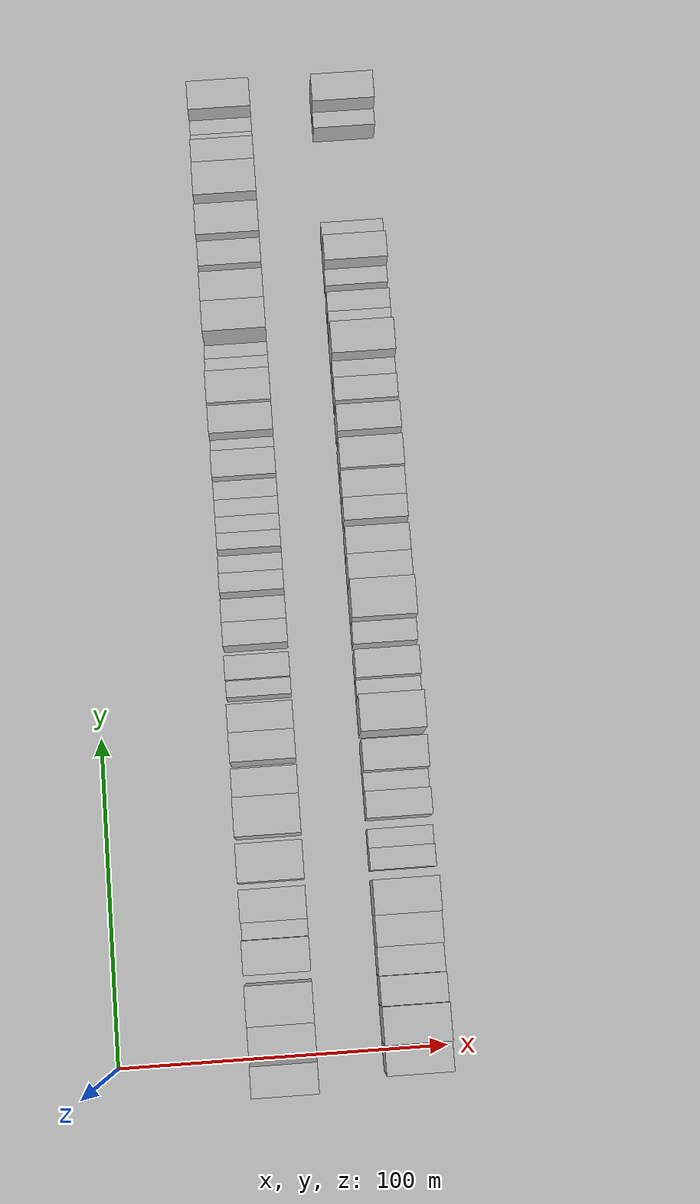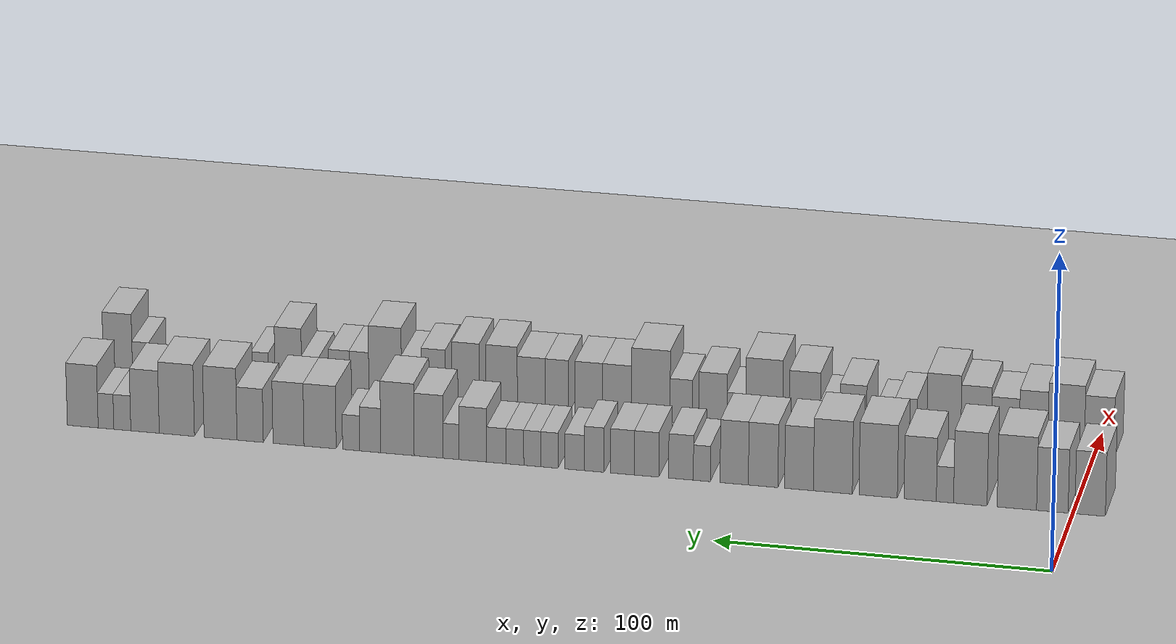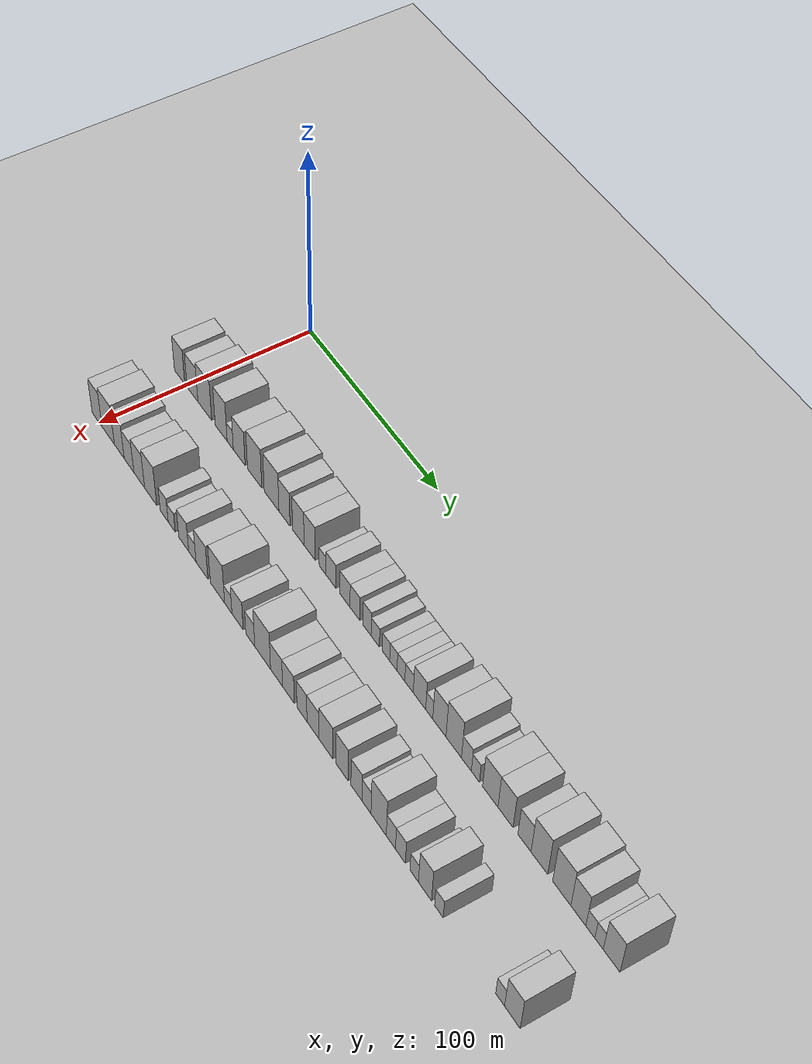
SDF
<sdf version="1.6">
 <world name="default">
  <include><name>ground_plane_1</name><uri>model://HANNAS_ground_plane</uri></include>
  <include>
   <name>ground_plane_2</name>
   <uri>model://HANNAS_ground_plane</uri>
   <pose>100 0 0  0 0 0</pose>
  </include>
  <model name="building_34">
   <static>1</static>
   <pose>50.0000 -5.1855 0 0.000000 0.000000 0.000000</pose>
   <link name="link">
    <pose>0 0 10.50 0 0 0</pose>
    <collision name="collision"><geometry><box><size>20.0000 9.0860 21.0000</size></box></geometry></collision>
    <visual name="visual">
     <cast_shadows>0</cast_shadows>
     <geometry><box><size>20.0000 9.0860 21.0000</size></box></geometry>
     <material>
      <script>
       <uri>model://HANNAS_wall/materials/scripts</uri>
       <uri>model://HANNAS_wall/materials/textures</uri>
       <name>vrc/HANNAS_wall</name>
      </script>
     </material>
    </visual>
   </link>
  </model>
  <model name="building_35">
   <static>1</static>
   <pose>50.0000 6.0593 0 0.000000 0.000000 0.000000</pose>
   <link name="link">
    <pose>0 0 10.50 0 0 0</pose>
    <collision name="collision"><geometry><box><size>20.0000 9.4036 21.0000</size></box></geometry></collision>
    <visual name="visual">
     <cast_shadows>0</cast_shadows>
     <geometry><box><size>20.0000 9.4036 21.0000</size></box></geometry>
     <material>
      <script>
       <uri>model://HANNAS_wall/materials/scripts</uri>
       <uri>model://HANNAS_wall/materials/textures</uri>
       <name>vrc/HANNAS_wall</name>
      </script>
     </material>
    </visual>
   </link>
  </model>
  <model name="building_36">
   <static>1</static>
   <pose>50.0000 16.6558 0 0.000000 0.000000 0.000000</pose>
   <link name="link">
    <pose>0 0 12.00 0 0 0</pose>
    <collision name="collision"><geometry><box><size>20.0000 11.7895 24.0000</size></box></geometry></collision>
    <visual name="visual">
     <cast_shadows>0</cast_shadows>
     <geometry><box><size>20.0000 11.7895 24.0000</size></box></geometry>
     <material>
      <script>
       <uri>model://HANNAS_wall/materials/scripts</uri>
       <uri>model://HANNAS_wall/materials/textures</uri>
       <name>vrc/HANNAS_wall</name>
      </script>
     </material>
    </visual>
   </link>
  </model>
  <model name="building_37">
   <static>1</static>
   <pose>50.0000 30.5757 0 0.000000 0.000000 0.000000</pose>
   <link name="link">
    <pose>0 0 12.00 0 0 0</pose>
    <collision name="collision"><geometry><box><size>20.0000 10.0503 24.0000</size></box></geometry></collision>
    <visual name="visual">
     <cast_shadows>0</cast_shadows>
     <geometry><box><size>20.0000 10.0503 24.0000</size></box></geometry>
     <material>
      <script>
       <uri>model://HANNAS_wall/materials/scripts</uri>
       <uri>model://HANNAS_wall/materials/textures</uri>
       <name>vrc/HANNAS_wall</name>
      </script>
     </material>
    </visual>
   </link>
  </model>
  <model name="building_38">
   <static>1</static>
   <pose>50.0000 38.1745 0 0.000000 0.000000 0.000000</pose>
   <link name="link">
    <pose>0 0 6.00 0 0 0</pose>
    <collision name="collision"><geometry><box><size>20.0000 5.1472 12.0000</size></box></geometry></collision>
    <visual name="visual">
     <cast_shadows>0</cast_shadows>
     <geometry><box><size>20.0000 5.1472 12.0000</size></box></geometry>
     <material>
      <script>
       <uri>model://HANNAS_wall/materials/scripts</uri>
       <uri>model://HANNAS_wall/materials/textures</uri>
       <name>vrc/HANNAS_wall</name>
      </script>
     </material>
    </visual>
   </link>
  </model>
  <model name="building_39">
   <static>1</static>
   <pose>50.0000 45.6033 0 0.000000 0.000000 0.000000</pose>
   <link name="link">
    <pose>0 0 10.50 0 0 0</pose>
    <collision name="collision"><geometry><box><size>20.0000 9.7105 21.0000</size></box></geometry></collision>
    <visual name="visual">
     <cast_shadows>0</cast_shadows>
     <geometry><box><size>20.0000 9.7105 21.0000</size></box></geometry>
     <material>
      <script>
       <uri>model://HANNAS_wall/materials/scripts</uri>
       <uri>model://HANNAS_wall/materials/textures</uri>
       <name>vrc/HANNAS_wall</name>
      </script>
     </material>
    </visual>
   </link>
  </model>
  <model name="building_40">
   <static>1</static>
   <pose>50.0000 58.2262 0 0.000000 0.000000 0.000000</pose>
   <link name="link">
    <pose>0 0 12.00 0 0 0</pose>
    <collision name="collision"><geometry><box><size>20.0000 11.5352 24.0000</size></box></geometry></collision>
    <visual name="visual">
     <cast_shadows>0</cast_shadows>
     <geometry><box><size>20.0000 11.5352 24.0000</size></box></geometry>
     <material>
      <script>
       <uri>model://HANNAS_wall/materials/scripts</uri>
       <uri>model://HANNAS_wall/materials/textures</uri>
       <name>vrc/HANNAS_wall</name>
      </script>
     </material>
    </visual>
   </link>
  </model>
  <model name="building_41">
   <static>1</static>
   <pose>50.0000 71.8570 0 0.000000 0.000000 0.000000</pose>
   <link name="link">
    <pose>0 0 12.00 0 0 0</pose>
    <collision name="collision"><geometry><box><size>20.0000 11.7263 24.0000</size></box></geometry></collision>
    <visual name="visual">
     <cast_shadows>0</cast_shadows>
     <geometry><box><size>20.0000 11.7263 24.0000</size></box></geometry>
     <material>
      <script>
       <uri>model://HANNAS_wall/materials/scripts</uri>
       <uri>model://HANNAS_wall/materials/textures</uri>
       <name>vrc/HANNAS_wall</name>
      </script>
     </material>
    </visual>
   </link>
  </model>
  <model name="building_42">
   <static>1</static>
   <pose>50.0000 82.0700 0 0.000000 0.000000 0.000000</pose>
   <link name="link">
    <pose>0 0 10.50 0 0 0</pose>
    <collision name="collision"><geometry><box><size>20.0000 8.6996 21.0000</size></box></geometry></collision>
    <visual name="visual">
     <cast_shadows>0</cast_shadows>
     <geometry><box><size>20.0000 8.6996 21.0000</size></box></geometry>
     <material>
      <script>
       <uri>model://HANNAS_wall/materials/scripts</uri>
       <uri>model://HANNAS_wall/materials/textures</uri>
       <name>vrc/HANNAS_wall</name>
      </script>
     </material>
    </visual>
   </link>
  </model>
  <model name="building_43">
   <static>1</static>
   <pose>50.0000 92.8942 0 0.000000 0.000000 0.000000</pose>
   <link name="link">
    <pose>0 0 10.50 0 0 0</pose>
    <collision name="collision"><geometry><box><size>20.0000 8.9489 21.0000</size></box></geometry></collision>
    <visual name="visual">
     <cast_shadows>0</cast_shadows>
     <geometry><box><size>20.0000 8.9489 21.0000</size></box></geometry>
     <material>
      <script>
       <uri>model://HANNAS_wall/materials/scripts</uri>
       <uri>model://HANNAS_wall/materials/textures</uri>
       <name>vrc/HANNAS_wall</name>
      </script>
     </material>
    </visual>
   </link>
  </model>
  <model name="building_44">
   <static>1</static>
   <pose>50.0000 101.6525 0 0.000000 0.000000 0.000000</pose>
   <link name="link">
    <pose>0 0 10.50 0 0 0</pose>
    <collision name="collision"><geometry><box><size>20.0000 8.5676 21.0000</size></box></geometry></collision>
    <visual name="visual">
     <cast_shadows>0</cast_shadows>
     <geometry><box><size>20.0000 8.5676 21.0000</size></box></geometry>
     <material>
      <script>
       <uri>model://HANNAS_wall/materials/scripts</uri>
       <uri>model://HANNAS_wall/materials/textures</uri>
       <name>vrc/HANNAS_wall</name>
      </script>
     </material>
    </visual>
   </link>
  </model>
  <model name="building_45">
   <static>1</static>
   <pose>50.0000 111.4950 0 0.000000 0.000000 0.000000</pose>
   <link name="link">
    <pose>0 0 6.00 0 0 0</pose>
    <collision name="collision"><geometry><box><size>20.0000 5.1174 12.0000</size></box></geometry></collision>
    <visual name="visual">
     <cast_shadows>0</cast_shadows>
     <geometry><box><size>20.0000 5.1174 12.0000</size></box></geometry>
     <material>
      <script>
       <uri>model://HANNAS_wall/materials/scripts</uri>
       <uri>model://HANNAS_wall/materials/textures</uri>
       <name>vrc/HANNAS_wall</name>
      </script>
     </material>
    </visual>
   </link>
  </model>
  <model name="building_46">
   <static>1</static>
   <pose>50.0000 117.8021 0 0.000000 0.000000 0.000000</pose>
   <link name="link">
    <pose>0 0 7.50 0 0 0</pose>
    <collision name="collision"><geometry><box><size>20.0000 7.4967 15.0000</size></box></geometry></collision>
    <visual name="visual">
     <cast_shadows>0</cast_shadows>
     <geometry><box><size>20.0000 7.4967 15.0000</size></box></geometry>
     <material>
      <script>
       <uri>model://HANNAS_wall/materials/scripts</uri>
       <uri>model://HANNAS_wall/materials/textures</uri>
       <name>vrc/HANNAS_wall</name>
      </script>
     </material>
    </visual>
   </link>
  </model>
  <model name="building_47">
   <static>1</static>
   <pose>50.0000 128.2664 0 0.000000 0.000000 0.000000</pose>
   <link name="link">
    <pose>0 0 7.50 0 0 0</pose>
    <collision name="collision"><geometry><box><size>20.0000 7.4319 15.0000</size></box></geometry></collision>
    <visual name="visual">
     <cast_shadows>0</cast_shadows>
     <geometry><box><size>20.0000 7.4319 15.0000</size></box></geometry>
     <material>
      <script>
       <uri>model://HANNAS_wall/materials/scripts</uri>
       <uri>model://HANNAS_wall/materials/textures</uri>
       <name>vrc/HANNAS_wall</name>
      </script>
     </material>
    </visual>
   </link>
  </model>
  <model name="building_48">
   <static>1</static>
   <pose>50.0000 135.5950 0 0.000000 0.000000 0.000000</pose>
   <link name="link">
    <pose>0 0 7.50 0 0 0</pose>
    <collision name="collision"><geometry><box><size>20.0000 7.2254 15.0000</size></box></geometry></collision>
    <visual name="visual">
     <cast_shadows>0</cast_shadows>
     <geometry><box><size>20.0000 7.2254 15.0000</size></box></geometry>
     <material>
      <script>
       <uri>model://HANNAS_wall/materials/scripts</uri>
       <uri>model://HANNAS_wall/materials/textures</uri>
       <name>vrc/HANNAS_wall</name>
      </script>
     </material>
    </visual>
   </link>
  </model>
  <model name="building_49">
   <static>1</static>
   <pose>50.0000 144.2741 0 0.000000 0.000000 0.000000</pose>
   <link name="link">
    <pose>0 0 7.50 0 0 0</pose>
    <collision name="collision"><geometry><box><size>20.0000 6.1329 15.0000</size></box></geometry></collision>
    <visual name="visual">
     <cast_shadows>0</cast_shadows>
     <geometry><box><size>20.0000 6.1329 15.0000</size></box></geometry>
     <material>
      <script>
       <uri>model://HANNAS_wall/materials/scripts</uri>
       <uri>model://HANNAS_wall/materials/textures</uri>
       <name>vrc/HANNAS_wall</name>
      </script>
     </material>
    </visual>
   </link>
  </model>
  <model name="building_50">
   <static>1</static>
   <pose>50.0000 150.3079 0 0.000000 0.000000 0.000000</pose>
   <link name="link">
    <pose>0 0 6.00 0 0 0</pose>
    <collision name="collision"><geometry><box><size>20.0000 5.9346 12.0000</size></box></geometry></collision>
    <visual name="visual">
     <cast_shadows>0</cast_shadows>
     <geometry><box><size>20.0000 5.9346 12.0000</size></box></geometry>
     <material>
      <script>
       <uri>model://HANNAS_wall/materials/scripts</uri>
       <uri>model://HANNAS_wall/materials/textures</uri>
       <name>vrc/HANNAS_wall</name>
      </script>
     </material>
    </visual>
   </link>
  </model>
  <model name="building_51">
   <static>1</static>
   <pose>50.0000 157.9339 0 0.000000 0.000000 0.000000</pose>
   <link name="link">
    <pose>0 0 6.00 0 0 0</pose>
    <collision name="collision"><geometry><box><size>20.0000 5.3174 12.0000</size></box></geometry></collision>
    <visual name="visual">
     <cast_shadows>0</cast_shadows>
     <geometry><box><size>20.0000 5.3174 12.0000</size></box></geometry>
     <material>
      <script>
       <uri>model://HANNAS_wall/materials/scripts</uri>
       <uri>model://HANNAS_wall/materials/textures</uri>
       <name>vrc/HANNAS_wall</name>
      </script>
     </material>
    </visual>
   </link>
  </model>
  <model name="building_52">
   <static>1</static>
   <pose>50.0000 163.1805 0 0.000000 0.000000 0.000000</pose>
   <link name="link">
    <pose>0 0 6.00 0 0 0</pose>
    <collision name="collision"><geometry><box><size>20.0000 5.1758 12.0000</size></box></geometry></collision>
    <visual name="visual">
     <cast_shadows>0</cast_shadows>
     <geometry><box><size>20.0000 5.1758 12.0000</size></box></geometry>
     <material>
      <script>
       <uri>model://HANNAS_wall/materials/scripts</uri>
       <uri>model://HANNAS_wall/materials/textures</uri>
       <name>vrc/HANNAS_wall</name>
      </script>
     </material>
    </visual>
   </link>
  </model>
  <model name="building_53">
   <static>1</static>
   <pose>50.0000 168.5119 0 0.000000 0.000000 0.000000</pose>
   <link name="link">
    <pose>0 0 6.00 0 0 0</pose>
    <collision name="collision"><geometry><box><size>20.0000 5.4871 12.0000</size></box></geometry></collision>
    <visual name="visual">
     <cast_shadows>0</cast_shadows>
     <geometry><box><size>20.0000 5.4871 12.0000</size></box></geometry>
     <material>
      <script>
       <uri>model://HANNAS_wall/materials/scripts</uri>
       <uri>model://HANNAS_wall/materials/textures</uri>
       <name>vrc/HANNAS_wall</name>
      </script>
     </material>
    </visual>
   </link>
  </model>
  <model name="building_54">
   <static>1</static>
   <pose>50.0000 174.1888 0 0.000000 0.000000 0.000000</pose>
   <link name="link">
    <pose>0 0 6.00 0 0 0</pose>
    <collision name="collision"><geometry><box><size>20.0000 5.8667 12.0000</size></box></geometry></collision>
    <visual name="visual">
     <cast_shadows>0</cast_shadows>
     <geometry><box><size>20.0000 5.8667 12.0000</size></box></geometry>
     <material>
      <script>
       <uri>model://HANNAS_wall/materials/scripts</uri>
       <uri>model://HANNAS_wall/materials/textures</uri>
       <name>vrc/HANNAS_wall</name>
      </script>
     </material>
    </visual>
   </link>
  </model>
  <model name="building_55">
   <static>1</static>
   <pose>50.0000 181.3988 0 0.000000 0.000000 0.000000</pose>
   <link name="link">
    <pose>0 0 9.00 0 0 0</pose>
    <collision name="collision"><geometry><box><size>20.0000 8.5532 18.0000</size></box></geometry></collision>
    <visual name="visual">
     <cast_shadows>0</cast_shadows>
     <geometry><box><size>20.0000 8.5532 18.0000</size></box></geometry>
     <material>
      <script>
       <uri>model://HANNAS_wall/materials/scripts</uri>
       <uri>model://HANNAS_wall/materials/textures</uri>
       <name>vrc/HANNAS_wall</name>
      </script>
     </material>
    </visual>
   </link>
  </model>
  <model name="building_56">
   <static>1</static>
   <pose>50.0000 188.0860 0 0.000000 0.000000 0.000000</pose>
   <link name="link">
    <pose>0 0 6.00 0 0 0</pose>
    <collision name="collision"><geometry><box><size>20.0000 4.8214 12.0000</size></box></geometry></collision>
    <visual name="visual">
     <cast_shadows>0</cast_shadows>
     <geometry><box><size>20.0000 4.8214 12.0000</size></box></geometry>
     <material>
      <script>
       <uri>model://HANNAS_wall/materials/scripts</uri>
       <uri>model://HANNAS_wall/materials/textures</uri>
       <name>vrc/HANNAS_wall</name>
      </script>
     </material>
    </visual>
   </link>
  </model>
  <model name="building_57">
   <static>1</static>
   <pose>50.0000 194.9580 0 0.000000 0.000000 0.000000</pose>
   <link name="link">
    <pose>0 0 10.50 0 0 0</pose>
    <collision name="collision"><geometry><box><size>20.0000 8.9225 21.0000</size></box></geometry></collision>
    <visual name="visual">
     <cast_shadows>0</cast_shadows>
     <geometry><box><size>20.0000 8.9225 21.0000</size></box></geometry>
     <material>
      <script>
       <uri>model://HANNAS_wall/materials/scripts</uri>
       <uri>model://HANNAS_wall/materials/textures</uri>
       <name>vrc/HANNAS_wall</name>
      </script>
     </material>
    </visual>
   </link>
  </model>
  <model name="building_58">
   <static>1</static>
   <pose>50.0000 204.5758 0 0.000000 0.000000 0.000000</pose>
   <link name="link">
    <pose>0 0 12.00 0 0 0</pose>
    <collision name="collision"><geometry><box><size>20.0000 10.3131 24.0000</size></box></geometry></collision>
    <visual name="visual">
     <cast_shadows>0</cast_shadows>
     <geometry><box><size>20.0000 10.3131 24.0000</size></box></geometry>
     <material>
      <script>
       <uri>model://HANNAS_wall/materials/scripts</uri>
       <uri>model://HANNAS_wall/materials/textures</uri>
       <name>vrc/HANNAS_wall</name>
      </script>
     </material>
    </visual>
   </link>
  </model>
  <model name="building_59">
   <static>1</static>
   <pose>50.0000 212.9830 0 0.000000 0.000000 0.000000</pose>
   <link name="link">
    <pose>0 0 7.50 0 0 0</pose>
    <collision name="collision"><geometry><box><size>20.0000 6.5013 15.0000</size></box></geometry></collision>
    <visual name="visual">
     <cast_shadows>0</cast_shadows>
     <geometry><box><size>20.0000 6.5013 15.0000</size></box></geometry>
     <material>
      <script>
       <uri>model://HANNAS_wall/materials/scripts</uri>
       <uri>model://HANNAS_wall/materials/textures</uri>
       <name>vrc/HANNAS_wall</name>
      </script>
     </material>
    </visual>
   </link>
  </model>
  <model name="building_60">
   <static>1</static>
   <pose>50.0000 218.8792 0 0.000000 0.000000 0.000000</pose>
   <link name="link">
    <pose>0 0 6.00 0 0 0</pose>
    <collision name="collision"><geometry><box><size>20.0000 5.2910 12.0000</size></box></geometry></collision>
    <visual name="visual">
     <cast_shadows>0</cast_shadows>
     <geometry><box><size>20.0000 5.2910 12.0000</size></box></geometry>
     <material>
      <script>
       <uri>model://HANNAS_wall/materials/scripts</uri>
       <uri>model://HANNAS_wall/materials/textures</uri>
       <name>vrc/HANNAS_wall</name>
      </script>
     </material>
    </visual>
   </link>
  </model>
  <model name="building_61">
   <static>1</static>
   <pose>50.0000 228.4953 0 0.000000 0.000000 0.000000</pose>
   <link name="link">
    <pose>0 0 10.50 0 0 0</pose>
    <collision name="collision"><geometry><box><size>20.0000 9.9412 21.0000</size></box></geometry></collision>
    <visual name="visual">
     <cast_shadows>0</cast_shadows>
     <geometry><box><size>20.0000 9.9412 21.0000</size></box></geometry>
     <material>
      <script>
       <uri>model://HANNAS_wall/materials/scripts</uri>
       <uri>model://HANNAS_wall/materials/textures</uri>
       <name>vrc/HANNAS_wall</name>
      </script>
     </material>
    </visual>
   </link>
  </model>
  <model name="building_62">
   <static>1</static>
   <pose>50.0000 238.2640 0 0.000000 0.000000 0.000000</pose>
   <link name="link">
    <pose>0 0 10.50 0 0 0</pose>
    <collision name="collision"><geometry><box><size>20.0000 9.5962 21.0000</size></box></geometry></collision>
    <visual name="visual">
     <cast_shadows>0</cast_shadows>
     <geometry><box><size>20.0000 9.5962 21.0000</size></box></geometry>
     <material>
      <script>
       <uri>model://HANNAS_wall/materials/scripts</uri>
       <uri>model://HANNAS_wall/materials/textures</uri>
       <name>vrc/HANNAS_wall</name>
      </script>
     </material>
    </visual>
   </link>
  </model>
  <model name="building_63">
   <static>1</static>
   <pose>50.0000 250.1538 0 0.000000 0.000000 0.000000</pose>
   <link name="link">
    <pose>0 0 9.00 0 0 0</pose>
    <collision name="collision"><geometry><box><size>20.0000 8.1834 18.0000</size></box></geometry></collision>
    <visual name="visual">
     <cast_shadows>0</cast_shadows>
     <geometry><box><size>20.0000 8.1834 18.0000</size></box></geometry>
     <material>
      <script>
       <uri>model://HANNAS_wall/materials/scripts</uri>
       <uri>model://HANNAS_wall/materials/textures</uri>
       <name>vrc/HANNAS_wall</name>
      </script>
     </material>
    </visual>
   </link>
  </model>
  <model name="building_64">
   <static>1</static>
   <pose>50.0000 259.3626 0 0.000000 0.000000 0.000000</pose>
   <link name="link">
    <pose>0 0 12.00 0 0 0</pose>
    <collision name="collision"><geometry><box><size>20.0000 10.2342 24.0000</size></box></geometry></collision>
    <visual name="visual">
     <cast_shadows>0</cast_shadows>
     <geometry><box><size>20.0000 10.2342 24.0000</size></box></geometry>
     <material>
      <script>
       <uri>model://HANNAS_wall/materials/scripts</uri>
       <uri>model://HANNAS_wall/materials/textures</uri>
       <name>vrc/HANNAS_wall</name>
      </script>
     </material>
    </visual>
   </link>
  </model>
  <model name="building_65">
   <static>1</static>
   <pose>50.0000 272.9652 0 0.000000 0.000000 0.000000</pose>
   <link name="link">
    <pose>0 0 12.00 0 0 0</pose>
    <collision name="collision"><geometry><box><size>20.0000 10.9709 24.0000</size></box></geometry></collision>
    <visual name="visual">
     <cast_shadows>0</cast_shadows>
     <geometry><box><size>20.0000 10.9709 24.0000</size></box></geometry>
     <material>
      <script>
       <uri>model://HANNAS_wall/materials/scripts</uri>
       <uri>model://HANNAS_wall/materials/textures</uri>
       <name>vrc/HANNAS_wall</name>
      </script>
     </material>
    </visual>
   </link>
  </model>
  <model name="building_66">
   <static>1</static>
   <pose>50.0000 282.8895 0 0.000000 0.000000 0.000000</pose>
   <link name="link">
    <pose>0 0 10.50 0 0 0</pose>
    <collision name="collision"><geometry><box><size>20.0000 8.8778 21.0000</size></box></geometry></collision>
    <visual name="visual">
     <cast_shadows>0</cast_shadows>
     <geometry><box><size>20.0000 8.8778 21.0000</size></box></geometry>
     <material>
      <script>
       <uri>model://HANNAS_wall/materials/scripts</uri>
       <uri>model://HANNAS_wall/materials/textures</uri>
       <name>vrc/HANNAS_wall</name>
      </script>
     </material>
    </visual>
   </link>
  </model>
  <model name="building_67">
   <static>1</static>
   <pose>50.0000 289.9870 0 0.000000 0.000000 0.000000</pose>
   <link name="link">
    <pose>0 0 6.00 0 0 0</pose>
    <collision name="collision"><geometry><box><size>20.0000 5.3170 12.0000</size></box></geometry></collision>
    <visual name="visual">
     <cast_shadows>0</cast_shadows>
     <geometry><box><size>20.0000 5.3170 12.0000</size></box></geometry>
     <material>
      <script>
       <uri>model://HANNAS_wall/materials/scripts</uri>
       <uri>model://HANNAS_wall/materials/textures</uri>
       <name>vrc/HANNAS_wall</name>
      </script>
     </material>
    </visual>
   </link>
  </model>
  <model name="building_68">
   <static>1</static>
   <pose>50.0000 295.0909 0 0.000000 0.000000 0.000000</pose>
   <link name="link">
    <pose>0 0 6.00 0 0 0</pose>
    <collision name="collision"><geometry><box><size>20.0000 4.8909 12.0000</size></box></geometry></collision>
    <visual name="visual">
     <cast_shadows>0</cast_shadows>
     <geometry><box><size>20.0000 4.8909 12.0000</size></box></geometry>
     <material>
      <script>
       <uri>model://HANNAS_wall/materials/scripts</uri>
       <uri>model://HANNAS_wall/materials/textures</uri>
       <name>vrc/HANNAS_wall</name>
      </script>
     </material>
    </visual>
   </link>
  </model>
  <model name="building_69">
   <static>1</static>
   <pose>50.0000 302.3529 0 0.000000 0.000000 0.000000</pose>
   <link name="link">
    <pose>0 0 10.50 0 0 0</pose>
    <collision name="collision"><geometry><box><size>20.0000 9.6330 21.0000</size></box></geometry></collision>
    <visual name="visual">
     <cast_shadows>0</cast_shadows>
     <geometry><box><size>20.0000 9.6330 21.0000</size></box></geometry>
     <material>
      <script>
       <uri>model://HANNAS_wall/materials/scripts</uri>
       <uri>model://HANNAS_wall/materials/textures</uri>
       <name>vrc/HANNAS_wall</name>
      </script>
     </material>
    </visual>
   </link>
  </model>
  <model name="building_105">
   <static>1</static>
   <pose>90.0000 -1.7390 0 0.000000 0.000000 0.000000</pose>
   <link name="link">
    <pose>0 0 10.50 0 0 0</pose>
    <collision name="collision"><geometry><box><size>20.0000 8.9101 21.0000</size></box></geometry></collision>
    <visual name="visual">
     <cast_shadows>0</cast_shadows>
     <geometry><box><size>20.0000 8.9101 21.0000</size></box></geometry>
     <material>
      <script>
       <uri>model://HANNAS_wall/materials/scripts</uri>
       <uri>model://HANNAS_wall/materials/textures</uri>
       <name>vrc/HANNAS_wall</name>
      </script>
     </material>
    </visual>
   </link>
  </model>
  <model name="building_106">
   <static>1</static>
   <pose>90.0000 8.2553 0 0.000000 0.000000 0.000000</pose>
   <link name="link">
    <pose>0 0 12.00 0 0 0</pose>
    <collision name="collision"><geometry><box><size>20.0000 11.0785 24.0000</size></box></geometry></collision>
    <visual name="visual">
     <cast_shadows>0</cast_shadows>
     <geometry><box><size>20.0000 11.0785 24.0000</size></box></geometry>
     <material>
      <script>
       <uri>model://HANNAS_wall/materials/scripts</uri>
       <uri>model://HANNAS_wall/materials/textures</uri>
       <name>vrc/HANNAS_wall</name>
      </script>
     </material>
    </visual>
   </link>
  </model>
  <model name="building_107">
   <static>1</static>
   <pose>90.0000 18.1344 0 0.000000 0.000000 0.000000</pose>
   <link name="link">
    <pose>0 0 10.50 0 0 0</pose>
    <collision name="collision"><geometry><box><size>20.0000 8.6796 21.0000</size></box></geometry></collision>
    <visual name="visual">
     <cast_shadows>0</cast_shadows>
     <geometry><box><size>20.0000 8.6796 21.0000</size></box></geometry>
     <material>
      <script>
       <uri>model://HANNAS_wall/materials/scripts</uri>
       <uri>model://HANNAS_wall/materials/textures</uri>
       <name>vrc/HANNAS_wall</name>
      </script>
     </material>
    </visual>
   </link>
  </model>
  <model name="building_108">
   <static>1</static>
   <pose>90.0000 26.7055 0 0.000000 0.000000 0.000000</pose>
   <link name="link">
    <pose>0 0 9.00 0 0 0</pose>
    <collision name="collision"><geometry><box><size>20.0000 8.4627 18.0000</size></box></geometry></collision>
    <visual name="visual">
     <cast_shadows>0</cast_shadows>
     <geometry><box><size>20.0000 8.4627 18.0000</size></box></geometry>
     <material>
      <script>
       <uri>model://HANNAS_wall/materials/scripts</uri>
       <uri>model://HANNAS_wall/materials/textures</uri>
       <name>vrc/HANNAS_wall</name>
      </script>
     </material>
    </visual>
   </link>
  </model>
  <model name="building_109">
   <static>1</static>
   <pose>90.0000 35.5685 0 0.000000 0.000000 0.000000</pose>
   <link name="link">
    <pose>0 0 10.50 0 0 0</pose>
    <collision name="collision"><geometry><box><size>20.0000 9.2633 21.0000</size></box></geometry></collision>
    <visual name="visual">
     <cast_shadows>0</cast_shadows>
     <geometry><box><size>20.0000 9.2633 21.0000</size></box></geometry>
     <material>
      <script>
       <uri>model://HANNAS_wall/materials/scripts</uri>
       <uri>model://HANNAS_wall/materials/textures</uri>
       <name>vrc/HANNAS_wall</name>
      </script>
     </material>
    </visual>
   </link>
  </model>
  <model name="building_110">
   <static>1</static>
   <pose>90.0000 45.3783 0 0.000000 0.000000 0.000000</pose>
   <link name="link">
    <pose>0 0 12.00 0 0 0</pose>
    <collision name="collision"><geometry><box><size>20.0000 10.3563 24.0000</size></box></geometry></collision>
    <visual name="visual">
     <cast_shadows>0</cast_shadows>
     <geometry><box><size>20.0000 10.3563 24.0000</size></box></geometry>
     <material>
      <script>
       <uri>model://HANNAS_wall/materials/scripts</uri>
       <uri>model://HANNAS_wall/materials/textures</uri>
       <name>vrc/HANNAS_wall</name>
      </script>
     </material>
    </visual>
   </link>
  </model>
  <model name="building_111">
   <static>1</static>
   <pose>90.0000 56.8653 0 0.000000 0.000000 0.000000</pose>
   <link name="link">
    <pose>0 0 7.50 0 0 0</pose>
    <collision name="collision"><geometry><box><size>20.0000 6.6177 15.0000</size></box></geometry></collision>
    <visual name="visual">
     <cast_shadows>0</cast_shadows>
     <geometry><box><size>20.0000 6.6177 15.0000</size></box></geometry>
     <material>
      <script>
       <uri>model://HANNAS_wall/materials/scripts</uri>
       <uri>model://HANNAS_wall/materials/textures</uri>
       <name>vrc/HANNAS_wall</name>
      </script>
     </material>
    </visual>
   </link>
  </model>
  <model name="building_112">
   <static>1</static>
   <pose>90.0000 63.0735 0 0.000000 0.000000 0.000000</pose>
   <link name="link">
    <pose>0 0 6.00 0 0 0</pose>
    <collision name="collision"><geometry><box><size>20.0000 5.7986 12.0000</size></box></geometry></collision>
    <visual name="visual">
     <cast_shadows>0</cast_shadows>
     <geometry><box><size>20.0000 5.7986 12.0000</size></box></geometry>
     <material>
      <script>
       <uri>model://HANNAS_wall/materials/scripts</uri>
       <uri>model://HANNAS_wall/materials/textures</uri>
       <name>vrc/HANNAS_wall</name>
      </script>
     </material>
    </visual>
   </link>
  </model>
  <model name="building_113">
   <static>1</static>
   <pose>90.0000 73.0336 0 0.000000 0.000000 0.000000</pose>
   <link name="link">
    <pose>0 0 9.00 0 0 0</pose>
    <collision name="collision"><geometry><box><size>20.0000 8.1217 18.0000</size></box></geometry></collision>
    <visual name="visual">
     <cast_shadows>0</cast_shadows>
     <geometry><box><size>20.0000 8.1217 18.0000</size></box></geometry>
     <material>
      <script>
       <uri>model://HANNAS_wall/materials/scripts</uri>
       <uri>model://HANNAS_wall/materials/textures</uri>
       <name>vrc/HANNAS_wall</name>
      </script>
     </material>
    </visual>
   </link>
  </model>
  <model name="building_114">
   <static>1</static>
   <pose>90.0000 80.0879 0 0.000000 0.000000 0.000000</pose>
   <link name="link">
    <pose>0 0 6.00 0 0 0</pose>
    <collision name="collision"><geometry><box><size>20.0000 5.9867 12.0000</size></box></geometry></collision>
    <visual name="visual">
     <cast_shadows>0</cast_shadows>
     <geometry><box><size>20.0000 5.9867 12.0000</size></box></geometry>
     <material>
      <script>
       <uri>model://HANNAS_wall/materials/scripts</uri>
       <uri>model://HANNAS_wall/materials/textures</uri>
       <name>vrc/HANNAS_wall</name>
      </script>
     </material>
    </visual>
   </link>
  </model>
  <model name="building_115">
   <static>1</static>
   <pose>90.0000 87.8691 0 0.000000 0.000000 0.000000</pose>
   <link name="link">
    <pose>0 0 10.50 0 0 0</pose>
    <collision name="collision"><geometry><box><size>20.0000 9.5756 21.0000</size></box></geometry></collision>
    <visual name="visual">
     <cast_shadows>0</cast_shadows>
     <geometry><box><size>20.0000 9.5756 21.0000</size></box></geometry>
     <material>
      <script>
       <uri>model://HANNAS_wall/materials/scripts</uri>
       <uri>model://HANNAS_wall/materials/textures</uri>
       <name>vrc/HANNAS_wall</name>
      </script>
     </material>
    </visual>
   </link>
  </model>
  <model name="building_116">
   <static>1</static>
   <pose>90.0000 100.2866 0 0.000000 0.000000 0.000000</pose>
   <link name="link">
    <pose>0 0 12.00 0 0 0</pose>
    <collision name="collision"><geometry><box><size>20.0000 11.2594 24.0000</size></box></geometry></collision>
    <visual name="visual">
     <cast_shadows>0</cast_shadows>
     <geometry><box><size>20.0000 11.2594 24.0000</size></box></geometry>
     <material>
      <script>
       <uri>model://HANNAS_wall/materials/scripts</uri>
       <uri>model://HANNAS_wall/materials/textures</uri>
       <name>vrc/HANNAS_wall</name>
      </script>
     </material>
    </visual>
   </link>
  </model>
  <model name="building_117">
   <static>1</static>
   <pose>90.0000 108.7750 0 0.000000 0.000000 0.000000</pose>
   <link name="link">
    <pose>0 0 6.00 0 0 0</pose>
    <collision name="collision"><geometry><box><size>20.0000 5.7174 12.0000</size></box></geometry></collision>
    <visual name="visual">
     <cast_shadows>0</cast_shadows>
     <geometry><box><size>20.0000 5.7174 12.0000</size></box></geometry>
     <material>
      <script>
       <uri>model://HANNAS_wall/materials/scripts</uri>
       <uri>model://HANNAS_wall/materials/textures</uri>
       <name>vrc/HANNAS_wall</name>
      </script>
     </material>
    </visual>
   </link>
  </model>
  <model name="building_118">
   <static>1</static>
   <pose>90.0000 116.0005 0 0.000000 0.000000 0.000000</pose>
   <link name="link">
    <pose>0 0 9.00 0 0 0</pose>
    <collision name="collision"><geometry><box><size>20.0000 8.7336 18.0000</size></box></geometry></collision>
    <visual name="visual">
     <cast_shadows>0</cast_shadows>
     <geometry><box><size>20.0000 8.7336 18.0000</size></box></geometry>
     <material>
      <script>
       <uri>model://HANNAS_wall/materials/scripts</uri>
       <uri>model://HANNAS_wall/materials/textures</uri>
       <name>vrc/HANNAS_wall</name>
      </script>
     </material>
    </visual>
   </link>
  </model>
  <model name="building_119">
   <static>1</static>
   <pose>90.0000 125.8108 0 0.000000 0.000000 0.000000</pose>
   <link name="link">
    <pose>0 0 7.50 0 0 0</pose>
    <collision name="collision"><geometry><box><size>20.0000 6.8870 15.0000</size></box></geometry></collision>
    <visual name="visual">
     <cast_shadows>0</cast_shadows>
     <geometry><box><size>20.0000 6.8870 15.0000</size></box></geometry>
     <material>
      <script>
       <uri>model://HANNAS_wall/materials/scripts</uri>
       <uri>model://HANNAS_wall/materials/textures</uri>
       <name>vrc/HANNAS_wall</name>
      </script>
     </material>
    </visual>
   </link>
  </model>
  <model name="building_120">
   <static>1</static>
   <pose>90.0000 135.2157 0 0.000000 0.000000 0.000000</pose>
   <link name="link">
    <pose>0 0 12.00 0 0 0</pose>
    <collision name="collision"><geometry><box><size>20.0000 11.9229 24.0000</size></box></geometry></collision>
    <visual name="visual">
     <cast_shadows>0</cast_shadows>
     <geometry><box><size>20.0000 11.9229 24.0000</size></box></geometry>
     <material>
      <script>
       <uri>model://HANNAS_wall/materials/scripts</uri>
       <uri>model://HANNAS_wall/materials/textures</uri>
       <name>vrc/HANNAS_wall</name>
      </script>
     </material>
    </visual>
   </link>
  </model>
  <model name="building_121">
   <static>1</static>
   <pose>90.0000 145.6574 0 0.000000 0.000000 0.000000</pose>
   <link name="link">
    <pose>0 0 9.00 0 0 0</pose>
    <collision name="collision"><geometry><box><size>20.0000 8.9606 18.0000</size></box></geometry></collision>
    <visual name="visual">
     <cast_shadows>0</cast_shadows>
     <geometry><box><size>20.0000 8.9606 18.0000</size></box></geometry>
     <material>
      <script>
       <uri>model://HANNAS_wall/materials/scripts</uri>
       <uri>model://HANNAS_wall/materials/textures</uri>
       <name>vrc/HANNAS_wall</name>
      </script>
     </material>
    </visual>
   </link>
  </model>
  <model name="building_122">
   <static>1</static>
   <pose>90.0000 154.4338 0 0.000000 0.000000 0.000000</pose>
   <link name="link">
    <pose>0 0 9.00 0 0 0</pose>
    <collision name="collision"><geometry><box><size>20.0000 8.5922 18.0000</size></box></geometry></collision>
    <visual name="visual">
     <cast_shadows>0</cast_shadows>
     <geometry><box><size>20.0000 8.5922 18.0000</size></box></geometry>
     <material>
      <script>
       <uri>model://HANNAS_wall/materials/scripts</uri>
       <uri>model://HANNAS_wall/materials/textures</uri>
       <name>vrc/HANNAS_wall</name>
      </script>
     </material>
    </visual>
   </link>
  </model>
  <model name="building_123">
   <static>1</static>
   <pose>90.0000 164.3532 0 0.000000 0.000000 0.000000</pose>
   <link name="link">
    <pose>0 0 9.00 0 0 0</pose>
    <collision name="collision"><geometry><box><size>20.0000 7.2467 18.0000</size></box></geometry></collision>
    <visual name="visual">
     <cast_shadows>0</cast_shadows>
     <geometry><box><size>20.0000 7.2467 18.0000</size></box></geometry>
     <material>
      <script>
       <uri>model://HANNAS_wall/materials/scripts</uri>
       <uri>model://HANNAS_wall/materials/textures</uri>
       <name>vrc/HANNAS_wall</name>
      </script>
     </material>
    </visual>
   </link>
  </model>
  <model name="building_124">
   <static>1</static>
   <pose>90.0000 172.2988 0 0.000000 0.000000 0.000000</pose>
   <link name="link">
    <pose>0 0 9.00 0 0 0</pose>
    <collision name="collision"><geometry><box><size>20.0000 8.6445 18.0000</size></box></geometry></collision>
    <visual name="visual">
     <cast_shadows>0</cast_shadows>
     <geometry><box><size>20.0000 8.6445 18.0000</size></box></geometry>
     <material>
      <script>
       <uri>model://HANNAS_wall/materials/scripts</uri>
       <uri>model://HANNAS_wall/materials/textures</uri>
       <name>vrc/HANNAS_wall</name>
      </script>
     </material>
    </visual>
   </link>
  </model>
  <model name="building_125">
   <static>1</static>
   <pose>90.0000 181.5168 0 0.000000 0.000000 0.000000</pose>
   <link name="link">
    <pose>0 0 10.50 0 0 0</pose>
    <collision name="collision"><geometry><box><size>20.0000 9.7915 21.0000</size></box></geometry></collision>
    <visual name="visual">
     <cast_shadows>0</cast_shadows>
     <geometry><box><size>20.0000 9.7915 21.0000</size></box></geometry>
     <material>
      <script>
       <uri>model://HANNAS_wall/materials/scripts</uri>
       <uri>model://HANNAS_wall/materials/textures</uri>
       <name>vrc/HANNAS_wall</name>
      </script>
     </material>
    </visual>
   </link>
  </model>
  <model name="building_126">
   <static>1</static>
   <pose>90.0000 192.6986 0 0.000000 0.000000 0.000000</pose>
   <link name="link">
    <pose>0 0 10.50 0 0 0</pose>
    <collision name="collision"><geometry><box><size>20.0000 8.5722 21.0000</size></box></geometry></collision>
    <visual name="visual">
     <cast_shadows>0</cast_shadows>
     <geometry><box><size>20.0000 8.5722 21.0000</size></box></geometry>
     <material>
      <script>
       <uri>model://HANNAS_wall/materials/scripts</uri>
       <uri>model://HANNAS_wall/materials/textures</uri>
       <name>vrc/HANNAS_wall</name>
      </script>
     </material>
    </visual>
   </link>
  </model>
  <model name="building_127">
   <static>1</static>
   <pose>90.0000 202.7756 0 0.000000 0.000000 0.000000</pose>
   <link name="link">
    <pose>0 0 9.00 0 0 0</pose>
    <collision name="collision"><geometry><box><size>20.0000 7.5818 18.0000</size></box></geometry></collision>
    <visual name="visual">
     <cast_shadows>0</cast_shadows>
     <geometry><box><size>20.0000 7.5818 18.0000</size></box></geometry>
     <material>
      <script>
       <uri>model://HANNAS_wall/materials/scripts</uri>
       <uri>model://HANNAS_wall/materials/textures</uri>
       <name>vrc/HANNAS_wall</name>
      </script>
     </material>
    </visual>
   </link>
  </model>
  <model name="building_128">
   <static>1</static>
   <pose>90.0000 209.6544 0 0.000000 0.000000 0.000000</pose>
   <link name="link">
    <pose>0 0 7.50 0 0 0</pose>
    <collision name="collision"><geometry><box><size>20.0000 6.1758 15.0000</size></box></geometry></collision>
    <visual name="visual">
     <cast_shadows>0</cast_shadows>
     <geometry><box><size>20.0000 6.1758 15.0000</size></box></geometry>
     <material>
      <script>
       <uri>model://HANNAS_wall/materials/scripts</uri>
       <uri>model://HANNAS_wall/materials/textures</uri>
       <name>vrc/HANNAS_wall</name>
      </script>
     </material>
    </visual>
   </link>
  </model>
  <model name="building_129">
   <static>1</static>
   <pose>90.0000 217.8699 0 0.000000 0.000000 0.000000</pose>
   <link name="link">
    <pose>0 0 12.00 0 0 0</pose>
    <collision name="collision"><geometry><box><size>20.0000 10.2552 24.0000</size></box></geometry></collision>
    <visual name="visual">
     <cast_shadows>0</cast_shadows>
     <geometry><box><size>20.0000 10.2552 24.0000</size></box></geometry>
     <material>
      <script>
       <uri>model://HANNAS_wall/materials/scripts</uri>
       <uri>model://HANNAS_wall/materials/textures</uri>
       <name>vrc/HANNAS_wall</name>
      </script>
     </material>
    </visual>
   </link>
  </model>
  <model name="building_130">
   <static>1</static>
   <pose>90.0000 226.0536 0 0.000000 0.000000 0.000000</pose>
   <link name="link">
    <pose>0 0 7.50 0 0 0</pose>
    <collision name="collision"><geometry><box><size>20.0000 6.1123 15.0000</size></box></geometry></collision>
    <visual name="visual">
     <cast_shadows>0</cast_shadows>
     <geometry><box><size>20.0000 6.1123 15.0000</size></box></geometry>
     <material>
      <script>
       <uri>model://HANNAS_wall/materials/scripts</uri>
       <uri>model://HANNAS_wall/materials/textures</uri>
       <name>vrc/HANNAS_wall</name>
      </script>
     </material>
    </visual>
   </link>
  </model>
  <model name="building_131">
   <static>1</static>
   <pose>90.0000 232.3634 0 0.000000 0.000000 0.000000</pose>
   <link name="link">
    <pose>0 0 7.50 0 0 0</pose>
    <collision name="collision"><geometry><box><size>20.0000 6.5071 15.0000</size></box></geometry></collision>
    <visual name="visual">
     <cast_shadows>0</cast_shadows>
     <geometry><box><size>20.0000 6.5071 15.0000</size></box></geometry>
     <material>
      <script>
       <uri>model://HANNAS_wall/materials/scripts</uri>
       <uri>model://HANNAS_wall/materials/textures</uri>
       <name>vrc/HANNAS_wall</name>
      </script>
     </material>
    </visual>
   </link>
  </model>
  <model name="building_132">
   <static>1</static>
   <pose>90.0000 241.3567 0 0.000000 0.000000 0.000000</pose>
   <link name="link">
    <pose>0 0 6.00 0 0 0</pose>
    <collision name="collision"><geometry><box><size>20.0000 5.4795 12.0000</size></box></geometry></collision>
    <visual name="visual">
     <cast_shadows>0</cast_shadows>
     <geometry><box><size>20.0000 5.4795 12.0000</size></box></geometry>
     <material>
      <script>
       <uri>model://HANNAS_wall/materials/scripts</uri>
       <uri>model://HANNAS_wall/materials/textures</uri>
       <name>vrc/HANNAS_wall</name>
      </script>
     </material>
    </visual>
   </link>
  </model>
  <model name="building_133">
   <static>1</static>
   <pose>90.0000 248.2980 0 0.000000 0.000000 0.000000</pose>
   <link name="link">
    <pose>0 0 10.50 0 0 0</pose>
    <collision name="collision"><geometry><box><size>20.0000 8.4032 21.0000</size></box></geometry></collision>
    <visual name="visual">
     <cast_shadows>0</cast_shadows>
     <geometry><box><size>20.0000 8.4032 21.0000</size></box></geometry>
     <material>
      <script>
       <uri>model://HANNAS_wall/materials/scripts</uri>
       <uri>model://HANNAS_wall/materials/textures</uri>
       <name>vrc/HANNAS_wall</name>
      </script>
     </material>
    </visual>
   </link>
  </model>
  <model name="building_134">
   <static>1</static>
   <pose>90.0000 257.2131 0 0.000000 0.000000 0.000000</pose>
   <link name="link">
    <pose>0 0 6.00 0 0 0</pose>
    <collision name="collision"><geometry><box><size>20.0000 5.4269 12.0000</size></box></geometry></collision>
    <visual name="visual">
     <cast_shadows>0</cast_shadows>
     <geometry><box><size>20.0000 5.4269 12.0000</size></box></geometry>
     <material>
      <script>
       <uri>model://HANNAS_wall/materials/scripts</uri>
       <uri>model://HANNAS_wall/materials/textures</uri>
       <name>vrc/HANNAS_wall</name>
      </script>
     </material>
    </visual>
   </link>
  </model>
  <model name="building_135">
   <static>1</static>
   <pose>90.0000 294.9376 0 0.000000 0.000000 0.000000</pose>
   <link name="link">
    <pose>0 0 6.00 0 0 0</pose>
    <collision name="collision"><geometry><box><size>20.0000 5.3407 12.0000</size></box></geometry></collision>
    <visual name="visual">
     <cast_shadows>0</cast_shadows>
     <geometry><box><size>20.0000 5.3407 12.0000</size></box></geometry>
     <material>
      <script>
       <uri>model://HANNAS_wall/materials/scripts</uri>
       <uri>model://HANNAS_wall/materials/textures</uri>
       <name>vrc/HANNAS_wall</name>
      </script>
     </material>
    </visual>
   </link>
  </model>
  <model name="building_136">
   <static>1</static>
   <pose>90.0000 302.2154 0 0.000000 0.000000 0.000000</pose>
   <link name="link">
    <pose>0 0 10.50 0 0 0</pose>
    <collision name="collision"><geometry><box><size>20.0000 9.2147 21.0000</size></box></geometry></collision>
    <visual name="visual">
     <cast_shadows>0</cast_shadows>
     <geometry><box><size>20.0000 9.2147 21.0000</size></box></geometry>
     <material>
      <script>
       <uri>model://HANNAS_wall/materials/scripts</uri>
       <uri>model://HANNAS_wall/materials/textures</uri>
       <name>vrc/HANNAS_wall</name>
      </script>
     </material>
    </visual>
   </link>
  </model>
 </world>
</sdf>
